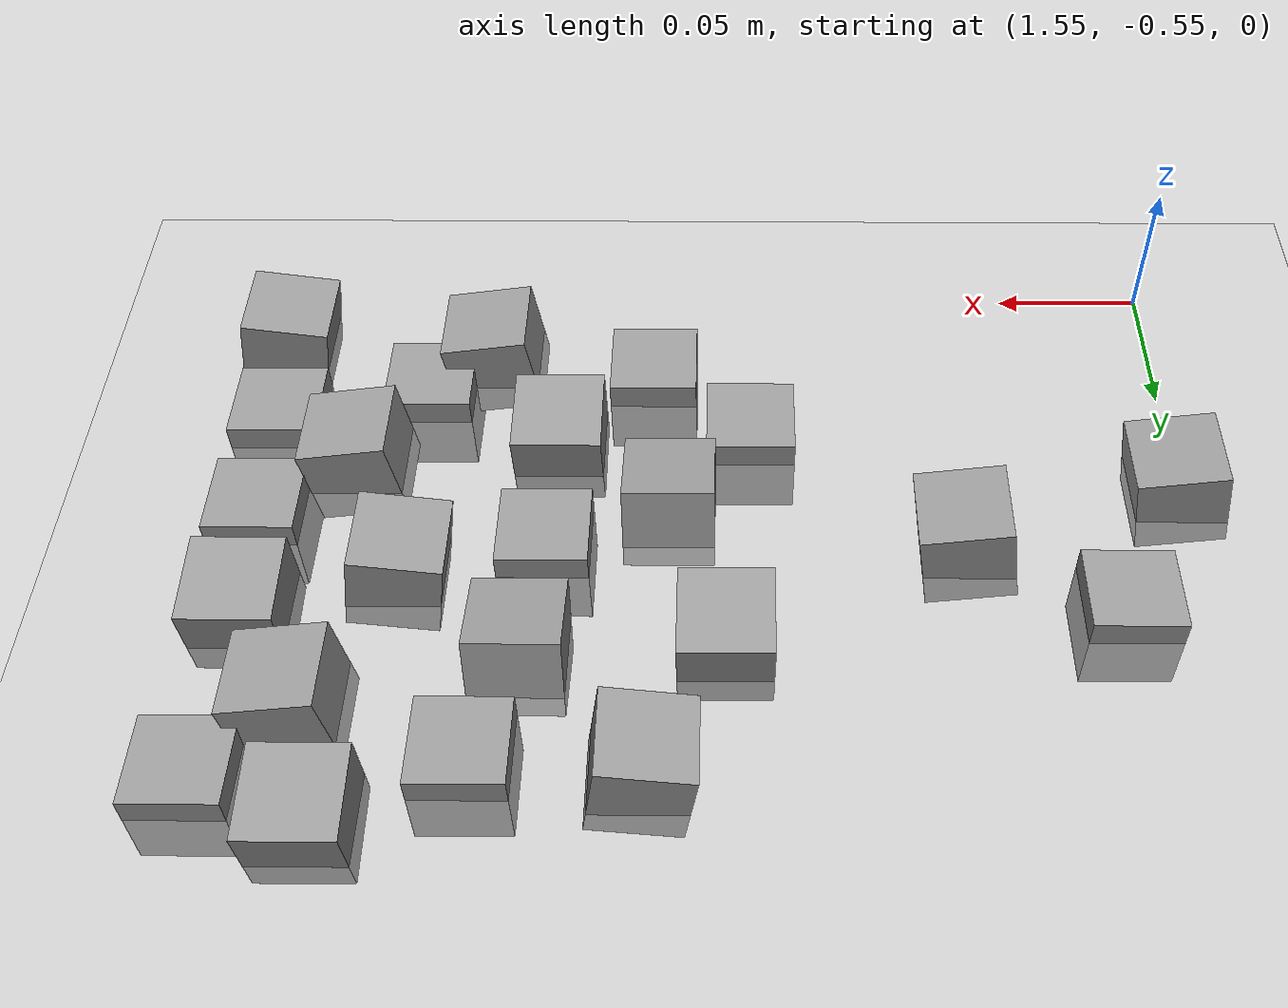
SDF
<sdf version="1.7">
 <world name="default">
  <model name="ground_plane">
   <static>1</static>
   <link name="link">
    <collision name="collision">
     <geometry><plane><normal>0 0 1</normal><size>100 100</size></plane></geometry>
     <surface><friction><ode><mu>100</mu><mu2>50</mu2></ode></friction></surface>
    </collision>
    <visual name="visual">
     <cast_shadows>0</cast_shadows>
     <geometry><plane><normal>0 0 1</normal><size>100 100</size></plane></geometry>
     <material>
      <script><uri>file://media/materials/scripts/gazebo.material</uri><name>Gazebo/Grey</name></script>
     </material>
    </visual>
   </link>
  </model>
  <model name="stone_road_1">
   <link name="link_0_clone_2_clone_2_clone_13_clone_clone_16_clone_19">
    <inertial>
     <mass>1</mass>
     <inertia>
      <ixx>0.166667</ixx>
      <ixy>0</ixy>
      <ixz>0</ixz>
      <iyy>0.166667</iyy>
      <iyz>0</iyz>
      <izz>0.166667</izz>
     </inertia>
    </inertial>
    <pose>0.219442 0.006622 -0.006222 0 -0 0</pose>
    <kinematic>1</kinematic>
    <visual name="visual">
     <geometry><box><size>0.03 0.03 0.03</size></box></geometry>
     <material>
      <lighting>1</lighting>
      <script><uri>file://media/materials/scripts/gazebo.material</uri><name>Gazebo/Grey</name></script>
      <shader type="pixel"><normal_map>__default__</normal_map></shader>
      <ambient>0.3 0.3 0.3 1</ambient>
      <diffuse>0.7 0.7 0.7 1</diffuse>
      <specular>0.01 0.01 0.01 1</specular>
      <emissive>0 0 0 1</emissive>
     </material>
    </visual>
    <collision name="collision">
     <geometry><box><size>0.03 0.03 0.03</size></box></geometry>
     <surface>
      <friction>
       <ode><mu>1</mu><mu2>1</mu2><fdir1>0 0 0</fdir1><slip1>0</slip1><slip2>0</slip2></ode>
       <torsional>
        <coefficient>1</coefficient>
        <patch_radius>0</patch_radius>
        <surface_radius>0</surface_radius>
        <use_patch_radius>1</use_patch_radius>
        <ode><slip>0</slip></ode>
       </torsional>
      </friction>
      <bounce><restitution_coefficient>0</restitution_coefficient><threshold>1e+06</threshold></bounce>
      <contact>
       <collide_without_contact>0</collide_without_contact>
       <collide_without_contact_bitmask>1</collide_without_contact_bitmask>
       <collide_bitmask>1</collide_bitmask>
       <ode>
        <soft_cfm>0</soft_cfm>
        <soft_erp>0.2</soft_erp>
        <kp>1e+13</kp>
        <kd>1</kd>
        <max_vel>0.01</max_vel>
        <min_depth>0</min_depth>
       </ode>
       <bullet>
        <split_impulse>1</split_impulse>
        <split_impulse_penetration_threshold>-0.01</split_impulse_penetration_threshold>
        <soft_cfm>0</soft_cfm>
        <soft_erp>0.2</soft_erp>
        <kp>1e+13</kp>
        <kd>1</kd>
       </bullet>
      </contact>
     </surface>
    </collision>
   </link>
   <link name="link_0_clone_2_clone_8">
    <inertial>
     <mass>1</mass>
     <inertia>
      <ixx>0.166667</ixx>
      <ixy>0</ixy>
      <ixz>0</ixz>
      <iyy>0.166667</iyy>
      <iyz>0</iyz>
      <izz>0.166667</izz>
     </inertia>
    </inertial>
    <pose>0.197388 -0.042712 0.003778 0 0.15 0</pose>
    <kinematic>1</kinematic>
    <visual name="visual">
     <geometry><box><size>0.03 0.03 0.03</size></box></geometry>
     <material>
      <lighting>1</lighting>
      <script><uri>file://media/materials/scripts/gazebo.material</uri><name>Gazebo/Grey</name></script>
      <shader type="pixel"><normal_map>__default__</normal_map></shader>
      <ambient>0.3 0.3 0.3 1</ambient>
      <diffuse>0.7 0.7 0.7 1</diffuse>
      <specular>0.01 0.01 0.01 1</specular>
      <emissive>0 0 0 1</emissive>
     </material>
    </visual>
    <collision name="collision">
     <geometry><box><size>0.03 0.03 0.03</size></box></geometry>
     <surface>
      <friction>
       <ode><mu>1</mu><mu2>1</mu2><fdir1>0 0 0</fdir1><slip1>0</slip1><slip2>0</slip2></ode>
       <torsional>
        <coefficient>1</coefficient>
        <patch_radius>0</patch_radius>
        <surface_radius>0</surface_radius>
        <use_patch_radius>1</use_patch_radius>
        <ode><slip>0</slip></ode>
       </torsional>
      </friction>
      <bounce><restitution_coefficient>0</restitution_coefficient><threshold>1e+06</threshold></bounce>
      <contact>
       <collide_without_contact>0</collide_without_contact>
       <collide_without_contact_bitmask>1</collide_without_contact_bitmask>
       <collide_bitmask>1</collide_bitmask>
       <ode>
        <soft_cfm>0</soft_cfm>
        <soft_erp>0.2</soft_erp>
        <kp>1e+13</kp>
        <kd>1</kd>
        <max_vel>0.01</max_vel>
        <min_depth>0</min_depth>
       </ode>
       <bullet>
        <split_impulse>1</split_impulse>
        <split_impulse_penetration_threshold>-0.01</split_impulse_penetration_threshold>
        <soft_cfm>0</soft_cfm>
        <soft_erp>0.2</soft_erp>
        <kp>1e+13</kp>
        <kd>1</kd>
       </bullet>
      </contact>
     </surface>
    </collision>
   </link>
   <static>0</static>
   <pose>1.35395 -0.41641 -0 0 -0 0</pose>
  </model>
  <model name="stone_road_2">
   <link name="link_0">
    <inertial>
     <mass>1</mass>
     <inertia>
      <ixx>0.166667</ixx>
      <ixy>0</ixy>
      <ixz>0</ixz>
      <iyy>0.166667</iyy>
      <iyz>0</iyz>
      <izz>0.166667</izz>
     </inertia>
    </inertial>
    <pose>-0.171827 0.03973 0.003778 0.2 -0 0</pose>
    <kinematic>1</kinematic>
    <visual name="visual">
     <geometry><box><size>0.03 0.03 0.03</size></box></geometry>
     <material>
      <lighting>1</lighting>
      <script><uri>file://media/materials/scripts/gazebo.material</uri><name>Gazebo/Grey</name></script>
      <shader type="pixel"><normal_map>__default__</normal_map></shader>
      <ambient>0.3 0.3 0.3 1</ambient>
      <diffuse>0.7 0.7 0.7 1</diffuse>
      <specular>0.01 0.01 0.01 1</specular>
      <emissive>0 0 0 1</emissive>
     </material>
    </visual>
    <collision name="collision">
     <geometry><box><size>0.03 0.03 0.03</size></box></geometry>
     <surface>
      <friction>
       <ode><mu>1</mu><mu2>1</mu2><fdir1>0 0 0</fdir1><slip1>0</slip1><slip2>0</slip2></ode>
       <torsional>
        <coefficient>1</coefficient>
        <patch_radius>0</patch_radius>
        <surface_radius>0</surface_radius>
        <use_patch_radius>1</use_patch_radius>
        <ode><slip>0</slip></ode>
       </torsional>
      </friction>
      <bounce><restitution_coefficient>0</restitution_coefficient><threshold>1e+06</threshold></bounce>
      <contact>
       <collide_without_contact>0</collide_without_contact>
       <collide_without_contact_bitmask>1</collide_without_contact_bitmask>
       <collide_bitmask>1</collide_bitmask>
       <ode>
        <soft_cfm>0</soft_cfm>
        <soft_erp>0.2</soft_erp>
        <kp>1e+13</kp>
        <kd>1</kd>
        <max_vel>0.01</max_vel>
        <min_depth>0</min_depth>
       </ode>
       <bullet>
        <split_impulse>1</split_impulse>
        <split_impulse_penetration_threshold>-0.01</split_impulse_penetration_threshold>
        <soft_cfm>0</soft_cfm>
        <soft_erp>0.2</soft_erp>
        <kp>1e+13</kp>
        <kd>1</kd>
       </bullet>
      </contact>
     </surface>
    </collision>
   </link>
   <link name="link_0_clone_2">
    <inertial>
     <mass>1</mass>
     <inertia>
      <ixx>0.166667</ixx>
      <ixy>0</ixy>
      <ixz>0</ixz>
      <iyy>0.166667</iyy>
      <iyz>0</iyz>
      <izz>0.166667</izz>
     </inertia>
    </inertial>
    <pose>-0.065685 0.018139 0.003778 0 0.15 0</pose>
    <kinematic>1</kinematic>
    <visual name="visual">
     <geometry><box><size>0.03 0.03 0.03</size></box></geometry>
     <material>
      <lighting>1</lighting>
      <script><uri>file://media/materials/scripts/gazebo.material</uri><name>Gazebo/Grey</name></script>
      <shader type="pixel"><normal_map>__default__</normal_map></shader>
      <ambient>0.3 0.3 0.3 1</ambient>
      <diffuse>0.7 0.7 0.7 1</diffuse>
      <specular>0.01 0.01 0.01 1</specular>
      <emissive>0 0 0 1</emissive>
     </material>
    </visual>
    <collision name="collision">
     <geometry><box><size>0.03 0.03 0.03</size></box></geometry>
     <surface>
      <friction>
       <ode><mu>1</mu><mu2>1</mu2><fdir1>0 0 0</fdir1><slip1>0</slip1><slip2>0</slip2></ode>
       <torsional>
        <coefficient>1</coefficient>
        <patch_radius>0</patch_radius>
        <surface_radius>0</surface_radius>
        <use_patch_radius>1</use_patch_radius>
        <ode><slip>0</slip></ode>
       </torsional>
      </friction>
      <bounce><restitution_coefficient>0</restitution_coefficient><threshold>1e+06</threshold></bounce>
      <contact>
       <collide_without_contact>0</collide_without_contact>
       <collide_without_contact_bitmask>1</collide_without_contact_bitmask>
       <collide_bitmask>1</collide_bitmask>
       <ode>
        <soft_cfm>0</soft_cfm>
        <soft_erp>0.2</soft_erp>
        <kp>1e+13</kp>
        <kd>1</kd>
        <max_vel>0.01</max_vel>
        <min_depth>0</min_depth>
       </ode>
       <bullet>
        <split_impulse>1</split_impulse>
        <split_impulse_penetration_threshold>-0.01</split_impulse_penetration_threshold>
        <soft_cfm>0</soft_cfm>
        <soft_erp>0.2</soft_erp>
        <kp>1e+13</kp>
        <kd>1</kd>
       </bullet>
      </contact>
     </surface>
    </collision>
   </link>
   <link name="link_0_clone_2_clone">
    <inertial>
     <mass>1</mass>
     <inertia>
      <ixx>0.166667</ixx>
      <ixy>0</ixy>
      <ixz>0</ixz>
      <iyy>0.166667</iyy>
      <iyz>0</iyz>
      <izz>0.166667</izz>
     </inertia>
    </inertial>
    <pose>-0.10771 -0.03187 0.003778 0 0.15 0</pose>
    <kinematic>1</kinematic>
    <visual name="visual">
     <geometry><box><size>0.03 0.03 0.03</size></box></geometry>
     <material>
      <lighting>1</lighting>
      <script><uri>file://media/materials/scripts/gazebo.material</uri><name>Gazebo/Grey</name></script>
      <shader type="pixel"><normal_map>__default__</normal_map></shader>
      <ambient>0.3 0.3 0.3 1</ambient>
      <diffuse>0.7 0.7 0.7 1</diffuse>
      <specular>0.01 0.01 0.01 1</specular>
      <emissive>0 0 0 1</emissive>
     </material>
    </visual>
    <collision name="collision">
     <geometry><box><size>0.03 0.03 0.03</size></box></geometry>
     <surface>
      <friction>
       <ode><mu>1</mu><mu2>1</mu2><fdir1>0 0 0</fdir1><slip1>0</slip1><slip2>0</slip2></ode>
       <torsional>
        <coefficient>1</coefficient>
        <patch_radius>0</patch_radius>
        <surface_radius>0</surface_radius>
        <use_patch_radius>1</use_patch_radius>
        <ode><slip>0</slip></ode>
       </torsional>
      </friction>
      <bounce><restitution_coefficient>0</restitution_coefficient><threshold>1e+06</threshold></bounce>
      <contact>
       <collide_without_contact>0</collide_without_contact>
       <collide_without_contact_bitmask>1</collide_without_contact_bitmask>
       <collide_bitmask>1</collide_bitmask>
       <ode>
        <soft_cfm>0</soft_cfm>
        <soft_erp>0.2</soft_erp>
        <kp>1e+13</kp>
        <kd>1</kd>
        <max_vel>0.01</max_vel>
        <min_depth>0</min_depth>
       </ode>
       <bullet>
        <split_impulse>1</split_impulse>
        <split_impulse_penetration_threshold>-0.01</split_impulse_penetration_threshold>
        <soft_cfm>0</soft_cfm>
        <soft_erp>0.2</soft_erp>
        <kp>1e+13</kp>
        <kd>1</kd>
       </bullet>
      </contact>
     </surface>
    </collision>
   </link>
   <link name="link_0_clone_2_clone_2_clone_0">
    <inertial>
     <mass>1</mass>
     <inertia>
      <ixx>0.166667</ixx>
      <ixy>0</ixy>
      <ixz>0</ixz>
      <iyy>0.166667</iyy>
      <iyz>0</iyz>
      <izz>0.166667</izz>
     </inertia>
    </inertial>
    <pose>-0.032874 -0.039714 0.003778 0 -0.15 0</pose>
    <kinematic>1</kinematic>
    <visual name="visual">
     <geometry><box><size>0.03 0.03 0.03</size></box></geometry>
     <material>
      <lighting>1</lighting>
      <script><uri>file://media/materials/scripts/gazebo.material</uri><name>Gazebo/Grey</name></script>
      <shader type="pixel"><normal_map>__default__</normal_map></shader>
      <ambient>0.3 0.3 0.3 1</ambient>
      <diffuse>0.7 0.7 0.7 1</diffuse>
      <specular>0.01 0.01 0.01 1</specular>
      <emissive>0 0 0 1</emissive>
     </material>
    </visual>
    <collision name="collision">
     <geometry><box><size>0.03 0.03 0.03</size></box></geometry>
     <surface>
      <friction>
       <ode><mu>1</mu><mu2>1</mu2><fdir1>0 0 0</fdir1><slip1>0</slip1><slip2>0</slip2></ode>
       <torsional>
        <coefficient>1</coefficient>
        <patch_radius>0</patch_radius>
        <surface_radius>0</surface_radius>
        <use_patch_radius>1</use_patch_radius>
        <ode><slip>0</slip></ode>
       </torsional>
      </friction>
      <bounce><restitution_coefficient>0</restitution_coefficient><threshold>1e+06</threshold></bounce>
      <contact>
       <collide_without_contact>0</collide_without_contact>
       <collide_without_contact_bitmask>1</collide_without_contact_bitmask>
       <collide_bitmask>1</collide_bitmask>
       <ode>
        <soft_cfm>0</soft_cfm>
        <soft_erp>0.2</soft_erp>
        <kp>1e+13</kp>
        <kd>1</kd>
        <max_vel>0.01</max_vel>
        <min_depth>0</min_depth>
       </ode>
       <bullet>
        <split_impulse>1</split_impulse>
        <split_impulse_penetration_threshold>-0.01</split_impulse_penetration_threshold>
        <soft_cfm>0</soft_cfm>
        <soft_erp>0.2</soft_erp>
        <kp>1e+13</kp>
        <kd>1</kd>
       </bullet>
      </contact>
     </surface>
    </collision>
   </link>
   <link name="link_0_clone_2_clone_2_clone_1">
    <inertial>
     <mass>1</mass>
     <inertia>
      <ixx>0.166667</ixx>
      <ixy>0</ixy>
      <ixz>0</ixz>
      <iyy>0.166667</iyy>
      <iyz>0</iyz>
      <izz>0.166667</izz>
     </inertia>
    </inertial>
    <pose>-0.085624 0.065625 0.003778 0 -0.15 0</pose>
    <kinematic>1</kinematic>
    <visual name="visual">
     <geometry><box><size>0.03 0.03 0.03</size></box></geometry>
     <material>
      <lighting>1</lighting>
      <script><uri>file://media/materials/scripts/gazebo.material</uri><name>Gazebo/Grey</name></script>
      <shader type="pixel"><normal_map>__default__</normal_map></shader>
      <ambient>0.3 0.3 0.3 1</ambient>
      <diffuse>0.7 0.7 0.7 1</diffuse>
      <specular>0.01 0.01 0.01 1</specular>
      <emissive>0 0 0 1</emissive>
     </material>
    </visual>
    <collision name="collision">
     <geometry><box><size>0.03 0.03 0.03</size></box></geometry>
     <surface>
      <friction>
       <ode><mu>1</mu><mu2>1</mu2><fdir1>0 0 0</fdir1><slip1>0</slip1><slip2>0</slip2></ode>
       <torsional>
        <coefficient>1</coefficient>
        <patch_radius>0</patch_radius>
        <surface_radius>0</surface_radius>
        <use_patch_radius>1</use_patch_radius>
        <ode><slip>0</slip></ode>
       </torsional>
      </friction>
      <bounce><restitution_coefficient>0</restitution_coefficient><threshold>1e+06</threshold></bounce>
      <contact>
       <collide_without_contact>0</collide_without_contact>
       <collide_without_contact_bitmask>1</collide_without_contact_bitmask>
       <collide_bitmask>1</collide_bitmask>
       <ode>
        <soft_cfm>0</soft_cfm>
        <soft_erp>0.2</soft_erp>
        <kp>1e+13</kp>
        <kd>1</kd>
        <max_vel>0.01</max_vel>
        <min_depth>0</min_depth>
       </ode>
       <bullet>
        <split_impulse>1</split_impulse>
        <split_impulse_penetration_threshold>-0.01</split_impulse_penetration_threshold>
        <soft_cfm>0</soft_cfm>
        <soft_erp>0.2</soft_erp>
        <kp>1e+13</kp>
        <kd>1</kd>
       </bullet>
      </contact>
     </surface>
    </collision>
   </link>
   <link name="link_0_clone_2_clone_2_clone_13_clone_clone_13">
    <inertial>
     <mass>1</mass>
     <inertia>
      <ixx>0.166667</ixx>
      <ixy>0</ixy>
      <ixz>0</ixz>
      <iyy>0.166667</iyy>
      <iyz>0</iyz>
      <izz>0.166667</izz>
     </inertia>
    </inertial>
    <pose>-0.069861 0.157394 0.003778 -0.1 0 0</pose>
    <kinematic>1</kinematic>
    <visual name="visual">
     <geometry><box><size>0.03 0.03 0.03</size></box></geometry>
     <material>
      <lighting>1</lighting>
      <script><uri>file://media/materials/scripts/gazebo.material</uri><name>Gazebo/Grey</name></script>
      <shader type="pixel"><normal_map>__default__</normal_map></shader>
      <ambient>0.3 0.3 0.3 1</ambient>
      <diffuse>0.7 0.7 0.7 1</diffuse>
      <specular>0.01 0.01 0.01 1</specular>
      <emissive>0 0 0 1</emissive>
     </material>
    </visual>
    <collision name="collision">
     <geometry><box><size>0.03 0.03 0.03</size></box></geometry>
     <surface>
      <friction>
       <ode><mu>1</mu><mu2>1</mu2><fdir1>0 0 0</fdir1><slip1>0</slip1><slip2>0</slip2></ode>
       <torsional>
        <coefficient>1</coefficient>
        <patch_radius>0</patch_radius>
        <surface_radius>0</surface_radius>
        <use_patch_radius>1</use_patch_radius>
        <ode><slip>0</slip></ode>
       </torsional>
      </friction>
      <bounce><restitution_coefficient>0</restitution_coefficient><threshold>1e+06</threshold></bounce>
      <contact>
       <collide_without_contact>0</collide_without_contact>
       <collide_without_contact_bitmask>1</collide_without_contact_bitmask>
       <collide_bitmask>1</collide_bitmask>
       <ode>
        <soft_cfm>0</soft_cfm>
        <soft_erp>0.2</soft_erp>
        <kp>1e+13</kp>
        <kd>1</kd>
        <max_vel>0.01</max_vel>
        <min_depth>0</min_depth>
       </ode>
       <bullet>
        <split_impulse>1</split_impulse>
        <split_impulse_penetration_threshold>-0.01</split_impulse_penetration_threshold>
        <soft_cfm>0</soft_cfm>
        <soft_erp>0.2</soft_erp>
        <kp>1e+13</kp>
        <kd>1</kd>
       </bullet>
      </contact>
     </surface>
    </collision>
   </link>
   <link name="link_0_clone_2_clone_2_clone_13_clone_clone_14">
    <inertial>
     <mass>1</mass>
     <inertia>
      <ixx>0.166667</ixx>
      <ixy>0</ixy>
      <ixz>0</ixz>
      <iyy>0.166667</iyy>
      <iyz>0</iyz>
      <izz>0.166667</izz>
     </inertia>
    </inertial>
    <pose>-0.190578 0.093923 0.003778 -0.1 0 0</pose>
    <kinematic>1</kinematic>
    <visual name="visual">
     <geometry><box><size>0.03 0.03 0.03</size></box></geometry>
     <material>
      <lighting>1</lighting>
      <script><uri>file://media/materials/scripts/gazebo.material</uri><name>Gazebo/Grey</name></script>
      <shader type="pixel"><normal_map>__default__</normal_map></shader>
      <ambient>0.3 0.3 0.3 1</ambient>
      <diffuse>0.7 0.7 0.7 1</diffuse>
      <specular>0.01 0.01 0.01 1</specular>
      <emissive>0 0 0 1</emissive>
     </material>
    </visual>
    <collision name="collision">
     <geometry><box><size>0.03 0.03 0.03</size></box></geometry>
     <surface>
      <friction>
       <ode><mu>1</mu><mu2>1</mu2><fdir1>0 0 0</fdir1><slip1>0</slip1><slip2>0</slip2></ode>
       <torsional>
        <coefficient>1</coefficient>
        <patch_radius>0</patch_radius>
        <surface_radius>0</surface_radius>
        <use_patch_radius>1</use_patch_radius>
        <ode><slip>0</slip></ode>
       </torsional>
      </friction>
      <bounce><restitution_coefficient>0</restitution_coefficient><threshold>1e+06</threshold></bounce>
      <contact>
       <collide_without_contact>0</collide_without_contact>
       <collide_without_contact_bitmask>1</collide_without_contact_bitmask>
       <collide_bitmask>1</collide_bitmask>
       <ode>
        <soft_cfm>0</soft_cfm>
        <soft_erp>0.2</soft_erp>
        <kp>1e+13</kp>
        <kd>1</kd>
        <max_vel>0.01</max_vel>
        <min_depth>0</min_depth>
       </ode>
       <bullet>
        <split_impulse>1</split_impulse>
        <split_impulse_penetration_threshold>-0.01</split_impulse_penetration_threshold>
        <soft_cfm>0</soft_cfm>
        <soft_erp>0.2</soft_erp>
        <kp>1e+13</kp>
        <kd>1</kd>
       </bullet>
      </contact>
     </surface>
    </collision>
   </link>
   <link name="link_0_clone_2_clone_2_clone_13_clone_clone_16_clone_12">
    <inertial>
     <mass>1</mass>
     <inertia>
      <ixx>0.166667</ixx>
      <ixy>0</ixy>
      <ixz>0</ixz>
      <iyy>0.166667</iyy>
      <iyz>0</iyz>
      <izz>0.166667</izz>
     </inertia>
    </inertial>
    <pose>-0.164908 -0.022947 -0.006222 0 -0 0</pose>
    <kinematic>1</kinematic>
    <visual name="visual">
     <geometry><box><size>0.03 0.03 0.03</size></box></geometry>
     <material>
      <lighting>1</lighting>
      <script><uri>file://media/materials/scripts/gazebo.material</uri><name>Gazebo/Grey</name></script>
      <shader type="pixel"><normal_map>__default__</normal_map></shader>
      <ambient>0.3 0.3 0.3 1</ambient>
      <diffuse>0.7 0.7 0.7 1</diffuse>
      <specular>0.01 0.01 0.01 1</specular>
      <emissive>0 0 0 1</emissive>
     </material>
    </visual>
    <collision name="collision">
     <geometry><box><size>0.03 0.03 0.03</size></box></geometry>
     <surface>
      <friction>
       <ode><mu>1</mu><mu2>1</mu2><fdir1>0 0 0</fdir1><slip1>0</slip1><slip2>0</slip2></ode>
       <torsional>
        <coefficient>1</coefficient>
        <patch_radius>0</patch_radius>
        <surface_radius>0</surface_radius>
        <use_patch_radius>1</use_patch_radius>
        <ode><slip>0</slip></ode>
       </torsional>
      </friction>
      <bounce><restitution_coefficient>0</restitution_coefficient><threshold>1e+06</threshold></bounce>
      <contact>
       <collide_without_contact>0</collide_without_contact>
       <collide_without_contact_bitmask>1</collide_without_contact_bitmask>
       <collide_bitmask>1</collide_bitmask>
       <ode>
        <soft_cfm>0</soft_cfm>
        <soft_erp>0.2</soft_erp>
        <kp>1e+13</kp>
        <kd>1</kd>
        <max_vel>0.01</max_vel>
        <min_depth>0</min_depth>
       </ode>
       <bullet>
        <split_impulse>1</split_impulse>
        <split_impulse_penetration_threshold>-0.01</split_impulse_penetration_threshold>
        <soft_cfm>0</soft_cfm>
        <soft_erp>0.2</soft_erp>
        <kp>1e+13</kp>
        <kd>1</kd>
       </bullet>
      </contact>
     </surface>
    </collision>
   </link>
   <link name="link_0_clone_2_clone_2_clone_13_clone_clone_16_clone_2">
    <inertial>
     <mass>1</mass>
     <inertia>
      <ixx>0.166667</ixx>
      <ixy>0</ixy>
      <ixz>0</ixz>
      <iyy>0.166667</iyy>
      <iyz>0</iyz>
      <izz>0.166667</izz>
     </inertia>
    </inertial>
    <pose>-0.035128 0.040728 -0.006222 0 -0 0</pose>
    <kinematic>1</kinematic>
    <visual name="visual">
     <geometry><box><size>0.03 0.03 0.03</size></box></geometry>
     <material>
      <lighting>1</lighting>
      <script><uri>file://media/materials/scripts/gazebo.material</uri><name>Gazebo/Grey</name></script>
      <shader type="pixel"><normal_map>__default__</normal_map></shader>
      <ambient>0.3 0.3 0.3 1</ambient>
      <diffuse>0.7 0.7 0.7 1</diffuse>
      <specular>0.01 0.01 0.01 1</specular>
      <emissive>0 0 0 1</emissive>
     </material>
    </visual>
    <collision name="collision">
     <geometry><box><size>0.03 0.03 0.03</size></box></geometry>
     <surface>
      <friction>
       <ode><mu>1</mu><mu2>1</mu2><fdir1>0 0 0</fdir1><slip1>0</slip1><slip2>0</slip2></ode>
       <torsional>
        <coefficient>1</coefficient>
        <patch_radius>0</patch_radius>
        <surface_radius>0</surface_radius>
        <use_patch_radius>1</use_patch_radius>
        <ode><slip>0</slip></ode>
       </torsional>
      </friction>
      <bounce><restitution_coefficient>0</restitution_coefficient><threshold>1e+06</threshold></bounce>
      <contact>
       <collide_without_contact>0</collide_without_contact>
       <collide_without_contact_bitmask>1</collide_without_contact_bitmask>
       <collide_bitmask>1</collide_bitmask>
       <ode>
        <soft_cfm>0</soft_cfm>
        <soft_erp>0.2</soft_erp>
        <kp>1e+13</kp>
        <kd>1</kd>
        <max_vel>0.01</max_vel>
        <min_depth>0</min_depth>
       </ode>
       <bullet>
        <split_impulse>1</split_impulse>
        <split_impulse_penetration_threshold>-0.01</split_impulse_penetration_threshold>
        <soft_cfm>0</soft_cfm>
        <soft_erp>0.2</soft_erp>
        <kp>1e+13</kp>
        <kd>1</kd>
       </bullet>
      </contact>
     </surface>
    </collision>
   </link>
   <link name="link_0_clone_2_clone_2_clone_13_clone_clone_16_clone_21">
    <inertial>
     <mass>1</mass>
     <inertia>
      <ixx>0.166667</ixx>
      <ixy>0</ixy>
      <ixz>0</ixz>
      <iyy>0.166667</iyy>
      <iyz>0</iyz>
      <izz>0.166667</izz>
     </inertia>
    </inertial>
    <pose>-0.032398 0.142589 -0.006222 0 -0 0</pose>
    <kinematic>1</kinematic>
    <visual name="visual">
     <geometry><box><size>0.03 0.03 0.03</size></box></geometry>
     <material>
      <lighting>1</lighting>
      <script><uri>file://media/materials/scripts/gazebo.material</uri><name>Gazebo/Grey</name></script>
      <shader type="pixel"><normal_map>__default__</normal_map></shader>
      <ambient>0.3 0.3 0.3 1</ambient>
      <diffuse>0.7 0.7 0.7 1</diffuse>
      <specular>0.01 0.01 0.01 1</specular>
      <emissive>0 0 0 1</emissive>
     </material>
    </visual>
    <collision name="collision">
     <geometry><box><size>0.03 0.03 0.03</size></box></geometry>
     <surface>
      <friction>
       <ode><mu>1</mu><mu2>1</mu2><fdir1>0 0 0</fdir1><slip1>0</slip1><slip2>0</slip2></ode>
       <torsional>
        <coefficient>1</coefficient>
        <patch_radius>0</patch_radius>
        <surface_radius>0</surface_radius>
        <use_patch_radius>1</use_patch_radius>
        <ode><slip>0</slip></ode>
       </torsional>
      </friction>
      <bounce><restitution_coefficient>0</restitution_coefficient><threshold>1e+06</threshold></bounce>
      <contact>
       <collide_without_contact>0</collide_without_contact>
       <collide_without_contact_bitmask>1</collide_without_contact_bitmask>
       <collide_bitmask>1</collide_bitmask>
       <ode>
        <soft_cfm>0</soft_cfm>
        <soft_erp>0.2</soft_erp>
        <kp>1e+13</kp>
        <kd>1</kd>
        <max_vel>0.01</max_vel>
        <min_depth>0</min_depth>
       </ode>
       <bullet>
        <split_impulse>1</split_impulse>
        <split_impulse_penetration_threshold>-0.01</split_impulse_penetration_threshold>
        <soft_cfm>0</soft_cfm>
        <soft_erp>0.2</soft_erp>
        <kp>1e+13</kp>
        <kd>1</kd>
       </bullet>
      </contact>
     </surface>
    </collision>
   </link>
   <link name="link_0_clone_2_clone_2_clone_13_clone_clone_16_clone_26">
    <inertial>
     <mass>1</mass>
     <inertia>
      <ixx>0.166667</ixx>
      <ixy>0</ixy>
      <ixz>0</ixz>
      <iyy>0.166667</iyy>
      <iyz>0</iyz>
      <izz>0.166667</izz>
     </inertia>
    </inertial>
    <pose>-0.035162 -0.002247 -0.006222 0 -0 0</pose>
    <kinematic>1</kinematic>
    <visual name="visual">
     <geometry><box><size>0.03 0.03 0.03</size></box></geometry>
     <material>
      <lighting>1</lighting>
      <script><uri>file://media/materials/scripts/gazebo.material</uri><name>Gazebo/Grey</name></script>
      <shader type="pixel"><normal_map>__default__</normal_map></shader>
      <ambient>0.3 0.3 0.3 1</ambient>
      <diffuse>0.7 0.7 0.7 1</diffuse>
      <specular>0.01 0.01 0.01 1</specular>
      <emissive>0 0 0 1</emissive>
     </material>
    </visual>
    <collision name="collision">
     <geometry><box><size>0.03 0.03 0.03</size></box></geometry>
     <surface>
      <friction>
       <ode><mu>1</mu><mu2>1</mu2><fdir1>0 0 0</fdir1><slip1>0</slip1><slip2>0</slip2></ode>
       <torsional>
        <coefficient>1</coefficient>
        <patch_radius>0</patch_radius>
        <surface_radius>0</surface_radius>
        <use_patch_radius>1</use_patch_radius>
        <ode><slip>0</slip></ode>
       </torsional>
      </friction>
      <bounce><restitution_coefficient>0</restitution_coefficient><threshold>1e+06</threshold></bounce>
      <contact>
       <collide_without_contact>0</collide_without_contact>
       <collide_without_contact_bitmask>1</collide_without_contact_bitmask>
       <collide_bitmask>1</collide_bitmask>
       <ode>
        <soft_cfm>0</soft_cfm>
        <soft_erp>0.2</soft_erp>
        <kp>1e+13</kp>
        <kd>1</kd>
        <max_vel>0.01</max_vel>
        <min_depth>0</min_depth>
       </ode>
       <bullet>
        <split_impulse>1</split_impulse>
        <split_impulse_penetration_threshold>-0.01</split_impulse_penetration_threshold>
        <soft_cfm>0</soft_cfm>
        <soft_erp>0.2</soft_erp>
        <kp>1e+13</kp>
        <kd>1</kd>
       </bullet>
      </contact>
     </surface>
    </collision>
   </link>
   <link name="link_0_clone_2_clone_2_clone_13_clone_clone_16_clone_3">
    <inertial>
     <mass>1</mass>
     <inertia>
      <ixx>0.166667</ixx>
      <ixy>0</ixy>
      <ixz>0</ixz>
      <iyy>0.166667</iyy>
      <iyz>0</iyz>
      <izz>0.166667</izz>
     </inertia>
    </inertial>
    <pose>-0.112739 0.135576 -0.006222 0 -0 0</pose>
    <kinematic>1</kinematic>
    <visual name="visual">
     <geometry><box><size>0.03 0.03 0.03</size></box></geometry>
     <material>
      <lighting>1</lighting>
      <script><uri>file://media/materials/scripts/gazebo.material</uri><name>Gazebo/Grey</name></script>
      <shader type="pixel"><normal_map>__default__</normal_map></shader>
      <ambient>0.3 0.3 0.3 1</ambient>
      <diffuse>0.7 0.7 0.7 1</diffuse>
      <specular>0.01 0.01 0.01 1</specular>
      <emissive>0 0 0 1</emissive>
     </material>
    </visual>
    <collision name="collision">
     <geometry><box><size>0.03 0.03 0.03</size></box></geometry>
     <surface>
      <friction>
       <ode><mu>1</mu><mu2>1</mu2><fdir1>0 0 0</fdir1><slip1>0</slip1><slip2>0</slip2></ode>
       <torsional>
        <coefficient>1</coefficient>
        <patch_radius>0</patch_radius>
        <surface_radius>0</surface_radius>
        <use_patch_radius>1</use_patch_radius>
        <ode><slip>0</slip></ode>
       </torsional>
      </friction>
      <bounce><restitution_coefficient>0</restitution_coefficient><threshold>1e+06</threshold></bounce>
      <contact>
       <collide_without_contact>0</collide_without_contact>
       <collide_without_contact_bitmask>1</collide_without_contact_bitmask>
       <collide_bitmask>1</collide_bitmask>
       <ode>
        <soft_cfm>0</soft_cfm>
        <soft_erp>0.2</soft_erp>
        <kp>1e+13</kp>
        <kd>1</kd>
        <max_vel>0.01</max_vel>
        <min_depth>0</min_depth>
       </ode>
       <bullet>
        <split_impulse>1</split_impulse>
        <split_impulse_penetration_threshold>-0.01</split_impulse_penetration_threshold>
        <soft_cfm>0</soft_cfm>
        <soft_erp>0.2</soft_erp>
        <kp>1e+13</kp>
        <kd>1</kd>
       </bullet>
      </contact>
     </surface>
    </collision>
   </link>
   <link name="link_0_clone_2_clone_2_clone_13_clone_clone_16_clone_31">
    <inertial>
     <mass>1</mass>
     <inertia>
      <ixx>0.166667</ixx>
      <ixy>0</ixy>
      <ixz>0</ixz>
      <iyy>0.166667</iyy>
      <iyz>0</iyz>
      <izz>0.166667</izz>
     </inertia>
    </inertial>
    <pose>-0.198811 0.004584 -0.006222 0 -0 0</pose>
    <kinematic>1</kinematic>
    <visual name="visual">
     <geometry><box><size>0.03 0.03 0.03</size></box></geometry>
     <material>
      <lighting>1</lighting>
      <script><uri>file://media/materials/scripts/gazebo.material</uri><name>Gazebo/Grey</name></script>
      <shader type="pixel"><normal_map>__default__</normal_map></shader>
      <ambient>0.3 0.3 0.3 1</ambient>
      <diffuse>0.7 0.7 0.7 1</diffuse>
      <specular>0.01 0.01 0.01 1</specular>
      <emissive>0 0 0 1</emissive>
     </material>
    </visual>
    <collision name="collision">
     <geometry><box><size>0.03 0.03 0.03</size></box></geometry>
     <surface>
      <friction>
       <ode><mu>1</mu><mu2>1</mu2><fdir1>0 0 0</fdir1><slip1>0</slip1><slip2>0</slip2></ode>
       <torsional>
        <coefficient>1</coefficient>
        <patch_radius>0</patch_radius>
        <surface_radius>0</surface_radius>
        <use_patch_radius>1</use_patch_radius>
        <ode><slip>0</slip></ode>
       </torsional>
      </friction>
      <bounce><restitution_coefficient>0</restitution_coefficient><threshold>1e+06</threshold></bounce>
      <contact>
       <collide_without_contact>0</collide_without_contact>
       <collide_without_contact_bitmask>1</collide_without_contact_bitmask>
       <collide_bitmask>1</collide_bitmask>
       <ode>
        <soft_cfm>0</soft_cfm>
        <soft_erp>0.2</soft_erp>
        <kp>1e+13</kp>
        <kd>1</kd>
        <max_vel>0.01</max_vel>
        <min_depth>0</min_depth>
       </ode>
       <bullet>
        <split_impulse>1</split_impulse>
        <split_impulse_penetration_threshold>-0.01</split_impulse_penetration_threshold>
        <soft_cfm>0</soft_cfm>
        <soft_erp>0.2</soft_erp>
        <kp>1e+13</kp>
        <kd>1</kd>
       </bullet>
      </contact>
     </surface>
    </collision>
   </link>
   <link name="link_0_clone_2_clone_2_clone_13_clone_clone_16_clone_4">
    <inertial>
     <mass>1</mass>
     <inertia>
      <ixx>0.166667</ixx>
      <ixy>0</ixy>
      <ixz>0</ixz>
      <iyy>0.166667</iyy>
      <iyz>0</iyz>
      <izz>0.166667</izz>
     </inertia>
    </inertial>
    <pose>-0.131411 0.053677 -0.006222 0 -0 0</pose>
    <kinematic>1</kinematic>
    <visual name="visual">
     <geometry><box><size>0.03 0.03 0.03</size></box></geometry>
     <material>
      <lighting>1</lighting>
      <script><uri>file://media/materials/scripts/gazebo.material</uri><name>Gazebo/Grey</name></script>
      <shader type="pixel"><normal_map>__default__</normal_map></shader>
      <ambient>0.3 0.3 0.3 1</ambient>
      <diffuse>0.7 0.7 0.7 1</diffuse>
      <specular>0.01 0.01 0.01 1</specular>
      <emissive>0 0 0 1</emissive>
     </material>
    </visual>
    <collision name="collision">
     <geometry><box><size>0.03 0.03 0.03</size></box></geometry>
     <surface>
      <friction>
       <ode><mu>1</mu><mu2>1</mu2><fdir1>0 0 0</fdir1><slip1>0</slip1><slip2>0</slip2></ode>
       <torsional>
        <coefficient>1</coefficient>
        <patch_radius>0</patch_radius>
        <surface_radius>0</surface_radius>
        <use_patch_radius>1</use_patch_radius>
        <ode><slip>0</slip></ode>
       </torsional>
      </friction>
      <bounce><restitution_coefficient>0</restitution_coefficient><threshold>1e+06</threshold></bounce>
      <contact>
       <collide_without_contact>0</collide_without_contact>
       <collide_without_contact_bitmask>1</collide_without_contact_bitmask>
       <collide_bitmask>1</collide_bitmask>
       <ode>
        <soft_cfm>0</soft_cfm>
        <soft_erp>0.2</soft_erp>
        <kp>1e+13</kp>
        <kd>1</kd>
        <max_vel>0.01</max_vel>
        <min_depth>0</min_depth>
       </ode>
       <bullet>
        <split_impulse>1</split_impulse>
        <split_impulse_penetration_threshold>-0.01</split_impulse_penetration_threshold>
        <soft_cfm>0</soft_cfm>
        <soft_erp>0.2</soft_erp>
        <kp>1e+13</kp>
        <kd>1</kd>
       </bullet>
      </contact>
     </surface>
    </collision>
   </link>
   <link name="link_0_clone_2_clone_2_clone_13_clone_clone_16_clone_5">
    <inertial>
     <mass>1</mass>
     <inertia>
      <ixx>0.166667</ixx>
      <ixy>0</ixy>
      <ixz>0</ixz>
      <iyy>0.166667</iyy>
      <iyz>0</iyz>
      <izz>0.166667</izz>
     </inertia>
    </inertial>
    <pose>-0.086674 -0.014784 -0.006222 0 -0 0</pose>
    <kinematic>1</kinematic>
    <visual name="visual">
     <geometry><box><size>0.03 0.03 0.03</size></box></geometry>
     <material>
      <lighting>1</lighting>
      <script><uri>file://media/materials/scripts/gazebo.material</uri><name>Gazebo/Grey</name></script>
      <shader type="pixel"><normal_map>__default__</normal_map></shader>
      <ambient>0.3 0.3 0.3 1</ambient>
      <diffuse>0.7 0.7 0.7 1</diffuse>
      <specular>0.01 0.01 0.01 1</specular>
      <emissive>0 0 0 1</emissive>
     </material>
    </visual>
    <collision name="collision">
     <geometry><box><size>0.03 0.03 0.03</size></box></geometry>
     <surface>
      <friction>
       <ode><mu>1</mu><mu2>1</mu2><fdir1>0 0 0</fdir1><slip1>0</slip1><slip2>0</slip2></ode>
       <torsional>
        <coefficient>1</coefficient>
        <patch_radius>0</patch_radius>
        <surface_radius>0</surface_radius>
        <use_patch_radius>1</use_patch_radius>
        <ode><slip>0</slip></ode>
       </torsional>
      </friction>
      <bounce><restitution_coefficient>0</restitution_coefficient><threshold>1e+06</threshold></bounce>
      <contact>
       <collide_without_contact>0</collide_without_contact>
       <collide_without_contact_bitmask>1</collide_without_contact_bitmask>
       <collide_bitmask>1</collide_bitmask>
       <ode>
        <soft_cfm>0</soft_cfm>
        <soft_erp>0.2</soft_erp>
        <kp>1e+13</kp>
        <kd>1</kd>
        <max_vel>0.01</max_vel>
        <min_depth>0</min_depth>
       </ode>
       <bullet>
        <split_impulse>1</split_impulse>
        <split_impulse_penetration_threshold>-0.01</split_impulse_penetration_threshold>
        <soft_cfm>0</soft_cfm>
        <soft_erp>0.2</soft_erp>
        <kp>1e+13</kp>
        <kd>1</kd>
       </bullet>
      </contact>
     </surface>
    </collision>
   </link>
   <link name="link_0_clone_2_clone_2_clone_13_clone_clone_2">
    <inertial>
     <mass>1</mass>
     <inertia>
      <ixx>0.166667</ixx>
      <ixy>0</ixy>
      <ixz>0</ixz>
      <iyy>0.166667</iyy>
      <iyz>0</iyz>
      <izz>0.166667</izz>
     </inertia>
    </inertial>
    <pose>-0.037997 0.082571 0.003778 -0.1 0 0</pose>
    <kinematic>1</kinematic>
    <visual name="visual">
     <geometry><box><size>0.03 0.03 0.03</size></box></geometry>
     <material>
      <lighting>1</lighting>
      <script><uri>file://media/materials/scripts/gazebo.material</uri><name>Gazebo/Grey</name></script>
      <shader type="pixel"><normal_map>__default__</normal_map></shader>
      <ambient>0.3 0.3 0.3 1</ambient>
      <diffuse>0.7 0.7 0.7 1</diffuse>
      <specular>0.01 0.01 0.01 1</specular>
      <emissive>0 0 0 1</emissive>
     </material>
    </visual>
    <collision name="collision">
     <geometry><box><size>0.03 0.03 0.03</size></box></geometry>
     <surface>
      <friction>
       <ode><mu>1</mu><mu2>1</mu2><fdir1>0 0 0</fdir1><slip1>0</slip1><slip2>0</slip2></ode>
       <torsional>
        <coefficient>1</coefficient>
        <patch_radius>0</patch_radius>
        <surface_radius>0</surface_radius>
        <use_patch_radius>1</use_patch_radius>
        <ode><slip>0</slip></ode>
       </torsional>
      </friction>
      <bounce><restitution_coefficient>0</restitution_coefficient><threshold>1e+06</threshold></bounce>
      <contact>
       <collide_without_contact>0</collide_without_contact>
       <collide_without_contact_bitmask>1</collide_without_contact_bitmask>
       <collide_bitmask>1</collide_bitmask>
       <ode>
        <soft_cfm>0</soft_cfm>
        <soft_erp>0.2</soft_erp>
        <kp>1e+13</kp>
        <kd>1</kd>
        <max_vel>0.01</max_vel>
        <min_depth>0</min_depth>
       </ode>
       <bullet>
        <split_impulse>1</split_impulse>
        <split_impulse_penetration_threshold>-0.01</split_impulse_penetration_threshold>
        <soft_cfm>0</soft_cfm>
        <soft_erp>0.2</soft_erp>
        <kp>1e+13</kp>
        <kd>1</kd>
       </bullet>
      </contact>
     </surface>
    </collision>
   </link>
   <link name="link_0_clone_2_clone_2_clone_13_clone_clone_7">
    <inertial>
     <mass>1</mass>
     <inertia>
      <ixx>0.166667</ixx>
      <ixy>0</ixy>
      <ixz>0</ixz>
      <iyy>0.166667</iyy>
      <iyz>0</iyz>
      <izz>0.166667</izz>
     </inertia>
    </inertial>
    <pose>-0.133876 0.010561 0.003778 -0.1 0 0</pose>
    <kinematic>1</kinematic>
    <visual name="visual">
     <geometry><box><size>0.03 0.03 0.03</size></box></geometry>
     <material>
      <lighting>1</lighting>
      <script><uri>file://media/materials/scripts/gazebo.material</uri><name>Gazebo/Grey</name></script>
      <shader type="pixel"><normal_map>__default__</normal_map></shader>
      <ambient>0.3 0.3 0.3 1</ambient>
      <diffuse>0.7 0.7 0.7 1</diffuse>
      <specular>0.01 0.01 0.01 1</specular>
      <emissive>0 0 0 1</emissive>
     </material>
    </visual>
    <collision name="collision">
     <geometry><box><size>0.03 0.03 0.03</size></box></geometry>
     <surface>
      <friction>
       <ode><mu>1</mu><mu2>1</mu2><fdir1>0 0 0</fdir1><slip1>0</slip1><slip2>0</slip2></ode>
       <torsional>
        <coefficient>1</coefficient>
        <patch_radius>0</patch_radius>
        <surface_radius>0</surface_radius>
        <use_patch_radius>1</use_patch_radius>
        <ode><slip>0</slip></ode>
       </torsional>
      </friction>
      <bounce><restitution_coefficient>0</restitution_coefficient><threshold>1e+06</threshold></bounce>
      <contact>
       <collide_without_contact>0</collide_without_contact>
       <collide_without_contact_bitmask>1</collide_without_contact_bitmask>
       <collide_bitmask>1</collide_bitmask>
       <ode>
        <soft_cfm>0</soft_cfm>
        <soft_erp>0.2</soft_erp>
        <kp>1e+13</kp>
        <kd>1</kd>
        <max_vel>0.01</max_vel>
        <min_depth>0</min_depth>
       </ode>
       <bullet>
        <split_impulse>1</split_impulse>
        <split_impulse_penetration_threshold>-0.01</split_impulse_penetration_threshold>
        <soft_cfm>0</soft_cfm>
        <soft_erp>0.2</soft_erp>
        <kp>1e+13</kp>
        <kd>1</kd>
       </bullet>
      </contact>
     </surface>
    </collision>
   </link>
   <link name="link_0_clone_2_clone_2_clone_2">
    <inertial>
     <mass>1</mass>
     <inertia>
      <ixx>0.166667</ixx>
      <ixy>0</ixy>
      <ixz>0</ixz>
      <iyy>0.166667</iyy>
      <iyz>0</iyz>
      <izz>0.166667</izz>
     </inertia>
    </inertial>
    <pose>-0.166079 0.139989 0.003778 0 -0.15 0</pose>
    <kinematic>1</kinematic>
    <visual name="visual">
     <geometry><box><size>0.03 0.03 0.03</size></box></geometry>
     <material>
      <lighting>1</lighting>
      <script><uri>file://media/materials/scripts/gazebo.material</uri><name>Gazebo/Grey</name></script>
      <shader type="pixel"><normal_map>__default__</normal_map></shader>
      <ambient>0.3 0.3 0.3 1</ambient>
      <diffuse>0.7 0.7 0.7 1</diffuse>
      <specular>0.01 0.01 0.01 1</specular>
      <emissive>0 0 0 1</emissive>
     </material>
    </visual>
    <collision name="collision">
     <geometry><box><size>0.03 0.03 0.03</size></box></geometry>
     <surface>
      <friction>
       <ode><mu>1</mu><mu2>1</mu2><fdir1>0 0 0</fdir1><slip1>0</slip1><slip2>0</slip2></ode>
       <torsional>
        <coefficient>1</coefficient>
        <patch_radius>0</patch_radius>
        <surface_radius>0</surface_radius>
        <use_patch_radius>1</use_patch_radius>
        <ode><slip>0</slip></ode>
       </torsional>
      </friction>
      <bounce><restitution_coefficient>0</restitution_coefficient><threshold>1e+06</threshold></bounce>
      <contact>
       <collide_without_contact>0</collide_without_contact>
       <collide_without_contact_bitmask>1</collide_without_contact_bitmask>
       <collide_bitmask>1</collide_bitmask>
       <ode>
        <soft_cfm>0</soft_cfm>
        <soft_erp>0.2</soft_erp>
        <kp>1e+13</kp>
        <kd>1</kd>
        <max_vel>0.01</max_vel>
        <min_depth>0</min_depth>
       </ode>
       <bullet>
        <split_impulse>1</split_impulse>
        <split_impulse_penetration_threshold>-0.01</split_impulse_penetration_threshold>
        <soft_cfm>0</soft_cfm>
        <soft_erp>0.2</soft_erp>
        <kp>1e+13</kp>
        <kd>1</kd>
       </bullet>
      </contact>
     </surface>
    </collision>
   </link>
   <link name="link_0_clone_2_clone_3">
    <inertial>
     <mass>1</mass>
     <inertia>
      <ixx>0.166667</ixx>
      <ixy>0</ixy>
      <ixz>0</ixz>
      <iyy>0.166667</iyy>
      <iyz>0</iyz>
      <izz>0.166667</izz>
     </inertia>
    </inertial>
    <pose>-0.058921 0.117271 0.003778 0 0.15 0</pose>
    <kinematic>1</kinematic>
    <visual name="visual">
     <geometry><box><size>0.03 0.03 0.03</size></box></geometry>
     <material>
      <lighting>1</lighting>
      <script><uri>file://media/materials/scripts/gazebo.material</uri><name>Gazebo/Grey</name></script>
      <shader type="pixel"><normal_map>__default__</normal_map></shader>
      <ambient>0.3 0.3 0.3 1</ambient>
      <diffuse>0.7 0.7 0.7 1</diffuse>
      <specular>0.01 0.01 0.01 1</specular>
      <emissive>0 0 0 1</emissive>
     </material>
    </visual>
    <collision name="collision">
     <geometry><box><size>0.03 0.03 0.03</size></box></geometry>
     <surface>
      <friction>
       <ode><mu>1</mu><mu2>1</mu2><fdir1>0 0 0</fdir1><slip1>0</slip1><slip2>0</slip2></ode>
       <torsional>
        <coefficient>1</coefficient>
        <patch_radius>0</patch_radius>
        <surface_radius>0</surface_radius>
        <use_patch_radius>1</use_patch_radius>
        <ode><slip>0</slip></ode>
       </torsional>
      </friction>
      <bounce><restitution_coefficient>0</restitution_coefficient><threshold>1e+06</threshold></bounce>
      <contact>
       <collide_without_contact>0</collide_without_contact>
       <collide_without_contact_bitmask>1</collide_without_contact_bitmask>
       <collide_bitmask>1</collide_bitmask>
       <ode>
        <soft_cfm>0</soft_cfm>
        <soft_erp>0.2</soft_erp>
        <kp>1e+13</kp>
        <kd>1</kd>
        <max_vel>0.01</max_vel>
        <min_depth>0</min_depth>
       </ode>
       <bullet>
        <split_impulse>1</split_impulse>
        <split_impulse_penetration_threshold>-0.01</split_impulse_penetration_threshold>
        <soft_cfm>0</soft_cfm>
        <soft_erp>0.2</soft_erp>
        <kp>1e+13</kp>
        <kd>1</kd>
       </bullet>
      </contact>
     </surface>
    </collision>
   </link>
   <link name="link_0_clone_2_clone_5">
    <inertial>
     <mass>1</mass>
     <inertia>
      <ixx>0.166667</ixx>
      <ixy>0</ixy>
      <ixz>0</ixz>
      <iyy>0.166667</iyy>
      <iyz>0</iyz>
      <izz>0.166667</izz>
     </inertia>
    </inertial>
    <pose>-0.268485 0.053169 0.003778 0 0.15 0</pose>
    <kinematic>1</kinematic>
    <visual name="visual">
     <geometry><box><size>0.03 0.03 0.03</size></box></geometry>
     <material>
      <lighting>1</lighting>
      <script><uri>file://media/materials/scripts/gazebo.material</uri><name>Gazebo/Grey</name></script>
      <shader type="pixel"><normal_map>__default__</normal_map></shader>
      <ambient>0.3 0.3 0.3 1</ambient>
      <diffuse>0.7 0.7 0.7 1</diffuse>
      <specular>0.01 0.01 0.01 1</specular>
      <emissive>0 0 0 1</emissive>
     </material>
    </visual>
    <collision name="collision">
     <geometry><box><size>0.03 0.03 0.03</size></box></geometry>
     <surface>
      <friction>
       <ode><mu>1</mu><mu2>1</mu2><fdir1>0 0 0</fdir1><slip1>0</slip1><slip2>0</slip2></ode>
       <torsional>
        <coefficient>1</coefficient>
        <patch_radius>0</patch_radius>
        <surface_radius>0</surface_radius>
        <use_patch_radius>1</use_patch_radius>
        <ode><slip>0</slip></ode>
       </torsional>
      </friction>
      <bounce><restitution_coefficient>0</restitution_coefficient><threshold>1e+06</threshold></bounce>
      <contact>
       <collide_without_contact>0</collide_without_contact>
       <collide_without_contact_bitmask>1</collide_without_contact_bitmask>
       <collide_bitmask>1</collide_bitmask>
       <ode>
        <soft_cfm>0</soft_cfm>
        <soft_erp>0.2</soft_erp>
        <kp>1e+13</kp>
        <kd>1</kd>
        <max_vel>0.01</max_vel>
        <min_depth>0</min_depth>
       </ode>
       <bullet>
        <split_impulse>1</split_impulse>
        <split_impulse_penetration_threshold>-0.01</split_impulse_penetration_threshold>
        <soft_cfm>0</soft_cfm>
        <soft_erp>0.2</soft_erp>
        <kp>1e+13</kp>
        <kd>1</kd>
       </bullet>
      </contact>
     </surface>
    </collision>
   </link>
   <link name="link_0_clone_3">
    <inertial>
     <mass>1</mass>
     <inertia>
      <ixx>0.166667</ixx>
      <ixy>0</ixy>
      <ixz>0</ixz>
      <iyy>0.166667</iyy>
      <iyz>0</iyz>
      <izz>0.166667</izz>
     </inertia>
    </inertial>
    <pose>-0.126666 0.098861 0.003778 0.2 -0 0</pose>
    <kinematic>1</kinematic>
    <visual name="visual">
     <geometry><box><size>0.03 0.03 0.03</size></box></geometry>
     <material>
      <lighting>1</lighting>
      <script><uri>file://media/materials/scripts/gazebo.material</uri><name>Gazebo/Grey</name></script>
      <shader type="pixel"><normal_map>__default__</normal_map></shader>
      <ambient>0.3 0.3 0.3 1</ambient>
      <diffuse>0.7 0.7 0.7 1</diffuse>
      <specular>0.01 0.01 0.01 1</specular>
      <emissive>0 0 0 1</emissive>
     </material>
    </visual>
    <collision name="collision">
     <geometry><box><size>0.03 0.03 0.03</size></box></geometry>
     <surface>
      <friction>
       <ode><mu>1</mu><mu2>1</mu2><fdir1>0 0 0</fdir1><slip1>0</slip1><slip2>0</slip2></ode>
       <torsional>
        <coefficient>1</coefficient>
        <patch_radius>0</patch_radius>
        <surface_radius>0</surface_radius>
        <use_patch_radius>1</use_patch_radius>
        <ode><slip>0</slip></ode>
       </torsional>
      </friction>
      <bounce><restitution_coefficient>0</restitution_coefficient><threshold>1e+06</threshold></bounce>
      <contact>
       <collide_without_contact>0</collide_without_contact>
       <collide_without_contact_bitmask>1</collide_without_contact_bitmask>
       <collide_bitmask>1</collide_bitmask>
       <ode>
        <soft_cfm>0</soft_cfm>
        <soft_erp>0.2</soft_erp>
        <kp>1e+13</kp>
        <kd>1</kd>
        <max_vel>0.01</max_vel>
        <min_depth>0</min_depth>
       </ode>
       <bullet>
        <split_impulse>1</split_impulse>
        <split_impulse_penetration_threshold>-0.01</split_impulse_penetration_threshold>
        <soft_cfm>0</soft_cfm>
        <soft_erp>0.2</soft_erp>
        <kp>1e+13</kp>
        <kd>1</kd>
       </bullet>
      </contact>
     </surface>
    </collision>
   </link>
   <static>0</static>
   <pose>1.89226 -0.488312 -0 0 -0 0</pose>
  </model>
 </world>
</sdf>
